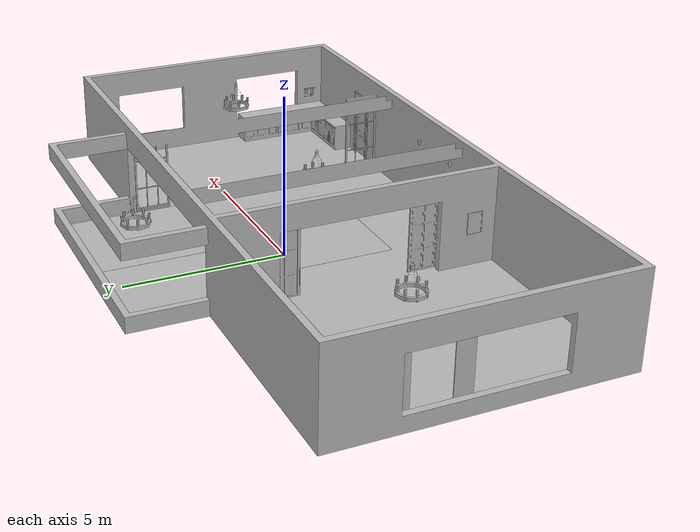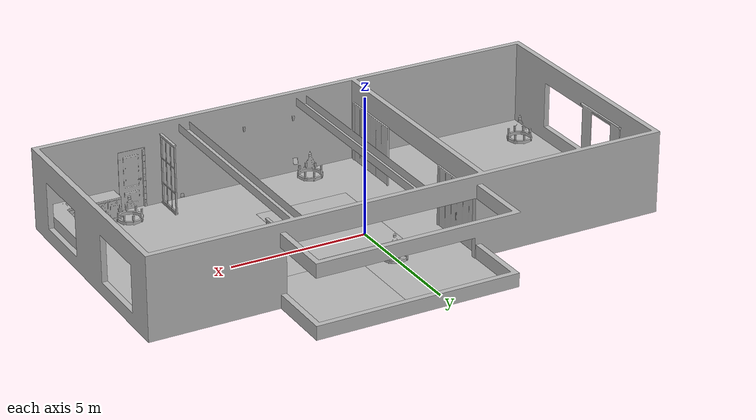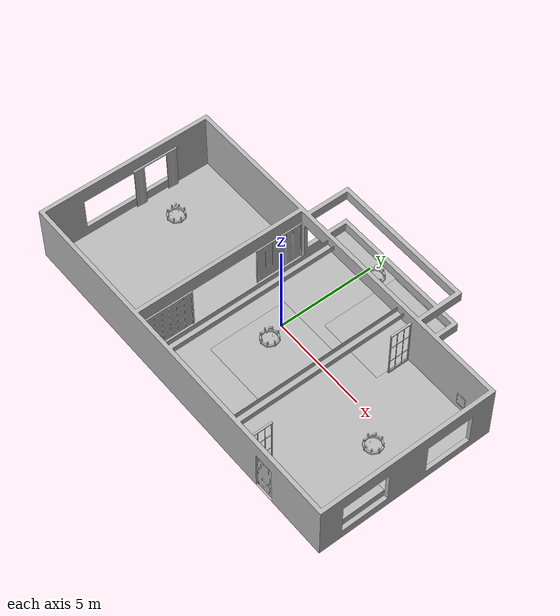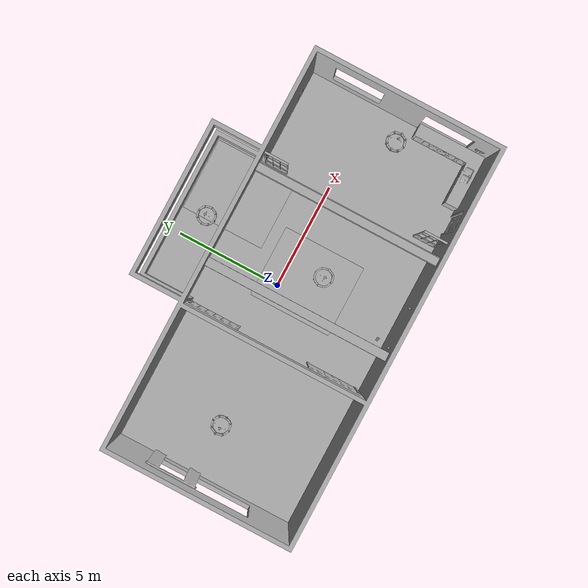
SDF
<sdf version="1.6">
 <world name="default">
  <gravity>0 0 -9.8</gravity>
  <magnetic_field>6e-06 2.3e-05 -4.2e-05</magnetic_field>
  <atmosphere type="adiabatic"/>
  <physics name="default_physics" default="0" type="ode">
   <max_step_size>0.001</max_step_size>
   <real_time_factor>1</real_time_factor>
   <real_time_update_rate>1000</real_time_update_rate>
  </physics>
  <scene>
   <ambient>0.4 0.4 0.4 1</ambient>
   <background>0.7 0.7 0.7 1</background>
   <shadows>false</shadows>
   <grid>false</grid>
   <origin_visual>false</origin_visual>
  </scene>
  <spherical_coordinates>
   <surface_model>EARTH_WGS84</surface_model>
   <latitude_deg>0</latitude_deg>
   <longitude_deg>0</longitude_deg>
   <elevation>0</elevation>
   <heading_deg>0</heading_deg>
  </spherical_coordinates>
  <model name="Chandelier_01_001">
   <static>true</static>
   <include><uri>model://aws_robomaker_residential_Chandelier_01</uri></include>
   <pose>1.221061 4.155740 1.295000 0 -0 0</pose>
  </model>
  <model name="Chandelier_01_002">
   <static>true</static>
   <include><uri>model://aws_robomaker_residential_Chandelier_01</uri></include>
   <pose>-6.451061 -0.692040 1.810000 0 -0 0</pose>
  </model>
  <model name="Chandelier_01_003">
   <static>true</static>
   <include><uri>model://aws_robomaker_residential_Chandelier_01</uri></include>
   <pose>7.824061 -1.59 1.7510000 0 -0 0</pose>
  </model>
  <model name="Chandelier_01_004">
   <static>true</static>
   <include><uri>model://aws_robomaker_residential_Chandelier_01</uri></include>
   <pose>1.221061 -1.592040 1.7873000 0 -0 0</pose>
  </model>
  <model name="Carpet_01_001">
   <static>true</static>
   <include><uri>model://aws_robomaker_residential_Carpet_01</uri></include>
   <pose>0.785050 -1.106647 0.001106 0 -0 0</pose>
  </model>
  <model name="Carpet_01_002">
   <static>true</static>
   <include><uri>model://aws_robomaker_residential_Carpet_01</uri></include>
   <pose>2.854050 3.45 0.000585 0 -0 0</pose>
  </model>
  <model name="Curtain_01_001">
   <static>true</static>
   <include><uri>model://aws_robomaker_residential_Curtain_01</uri></include>
   <pose>-9.172642 0.203760 0 0 -0 0</pose>
  </model>
  <model name="Door_01_001">
   <static>true</static>
   <include><uri>model://aws_robomaker_residential_Door_01</uri></include>
   <pose>6.001449 -5.549002 0 0 -0 0</pose>
  </model>
  <model name="FoldingDoor_01_001">
   <static>true</static>
   <include><uri>model://aws_robomaker_residential_FoldingDoor_01</uri></include>
   <pose>-2.461096 1.844219 0.041881 0 -0 0</pose>
  </model>
  <model name="FoldingDoor_01_002">
   <static>true</static>
   <include><uri>model://aws_robomaker_residential_FoldingDoor_01</uri></include>
   <pose>-2.461096 -4.053320 0.041881 0 -0 0</pose>
  </model>
  <model name="Handle_01_001">
   <static>true</static>
   <include><uri>model://aws_robomaker_residential_Handle_01</uri></include>
   <pose>5.724 -5.523 0.9938 0 -0 -3.1415</pose>
  </model>
  <model name="HouseWallB_01_001">
   <static>true</static>
   <include><uri>model://aws_robomaker_residential_HouseWallB_01</uri></include>
  </model>
  <model name="FloorB_01_001">
   <static>true</static>
   <include><uri>model://aws_robomaker_residential_FloorB_01</uri></include>
  </model>
  <model name="FoldingDoor_02_001">
   <static>true</static>
   <include><uri>model://aws_robomaker_residential_FoldingDoor_02</uri></include>
   <pose>4.674231 2.46451 0 0 -0 3.14159</pose>
  </model>
  <model name="FoldingDoor_02_002">
   <static>true</static>
   <include><uri>model://aws_robomaker_residential_FoldingDoor_02</uri></include>
   <pose>4.8912 -4.84968 0 0 -0 0</pose>
  </model>
  <model name="KitchenCabinet_01_001">
   <static>true</static>
   <include><uri>model://aws_robomaker_residential_KitchenCabinet_01</uri></include>
   <pose>8.002009 -3.836509 0.012068 0 -0 -3.140001</pose>
  </model>
  <model name="KitchenUtensils_01_001">
   <static>true</static>
   <include><uri>model://aws_robomaker_residential_KitchenUtensils_01</uri></include>
   <pose>9.285478 -5.021261 1.141805 0 -0 0</pose>
  </model>
  <model name="LightC_01_001">
   <static>true</static>
   <include><uri>model://aws_robomaker_residential_LightC_01</uri></include>
   <pose>1.769567 -5.4443710 2.000000 0 -0 0</pose>
  </model>
  <model name="LightC_01_002">
   <static>true</static>
   <include><uri>model://aws_robomaker_residential_LightC_01</uri></include>
   <pose>-0.138245 -5.4443710 2.000000 0 -0 0</pose>
  </model>
  <model name="PortraitA_01">
   <static>true</static>
   <include><uri>model://aws_robomaker_residential_PortraitA_01</uri></include>
   <pose>-2.712360 -4.817539 1.00000 0 -0 1.566796</pose>
  </model>
  <model name="PortraitA_02">
   <static>true</static>
   <include><uri>model://aws_robomaker_residential_PortraitA_02</uri></include>
   <pose>7.937017 3.080310 0.300000 0 -0 3.14</pose>
  </model>
  <model name="DeskPortraitA_01">
   <static>true</static>
   <include><uri>model://aws_robomaker_residential_DeskPortraitA_01</uri></include>
   <pose>-0.036864 -5.110156 0.498660 0 -0 2.927784</pose>
  </model>
  <model name="DeskPortraitD_04">
   <static>true</static>
   <include><uri>model://aws_robomaker_residential_DeskPortraitD_04</uri></include>
   <pose>4.302132 -5.176568 0.202496 0.007118 -0.000001 3.046683</pose>
  </model>
  <light name="LivingRoom_CeilingLight_0" type="point">
   <pose>1.194296 4.155759 2.2 0 -0 0</pose>
   <diffuse>0.5 0.5 0.5 1</diffuse>
   <specular>0.1 0.1 0.1 1</specular>
   <attenuation>
    <range>20</range>
    <constant>0.32</constant>
    <linear>0.01</linear>
    <quadratic>0.03</quadratic>
   </attenuation>
   <cast_shadows>0</cast_shadows>
   <direction>0 0 -1</direction>
  </light>
  <light name="LivingRoom_CeilingLight_1" type="point">
   <pose>1.194296 -1.589959 2.2 0 -0 0</pose>
   <diffuse>0.5 0.5 0.5 1</diffuse>
   <specular>0.1 0.1 0.1 1</specular>
   <attenuation>
    <range>20</range>
    <constant>0.05</constant>
    <linear>0.01</linear>
    <quadratic>0.09</quadratic>
   </attenuation>
   <cast_shadows>0</cast_shadows>
   <direction>0 0 -1</direction>
  </light>
  <light name="LivingRoom_WallLight_0" type="point">
   <pose>1.76956 -5.444370 2.2 0 -0 0</pose>
   <diffuse>0.24 0.24 0.24 1</diffuse>
   <specular>0.1 0.1 0.1 1</specular>
   <attenuation>
    <range>20</range>
    <constant>0.12</constant>
    <linear>0.00</linear>
    <quadratic>0.03</quadratic>
   </attenuation>
   <direction>0 0 -1</direction>
  </light>
  <light name="LivingRoom_WallLight_1" type="point">
   <pose>-0.13826 -5.444370 2.2 0 -0 0</pose>
   <diffuse>0.24 0.24 0.24 1</diffuse>
   <specular>0.1 0.1 0.1 1</specular>
   <attenuation>
    <range>20</range>
    <constant>0.12</constant>
    <linear>0.00</linear>
    <quadratic>0.03</quadratic>
   </attenuation>
   <direction>0 0 -1</direction>
  </light>
  <light name="TV_Light_0" type="point">
   <pose>0.8269 -4.939577 1.1 0 -0 0</pose>
   <diffuse>0.31372 0.31372 0.34901 1</diffuse>
   <specular>0.1 0.1 0.1 1</specular>
   <attenuation>
    <range>3</range>
    <constant>0.10</constant>
    <linear>0.04</linear>
    <quadratic>0.50</quadratic>
   </attenuation>
   <direction>0 0 -1</direction>
  </light>
  <light name="BedRoom_Portrait_Light_0" type="spot">
   <pose>-6.190379 -1.829697 1.5587 0.3 -0 0.0</pose>
   <diffuse>0.5 0.5 0.5 1</diffuse>
   <specular>0.1 0.1 0.1 1</specular>
   <attenuation>
    <range>20</range>
    <constant>0.50</constant>
    <linear>0.01</linear>
    <quadratic>0.00</quadratic>
   </attenuation>
   <spot><inner_angle>0.6</inner_angle><outer_angle>1.0</outer_angle><falloff>1.0</falloff></spot>
   <direction>0 0 -1</direction>
  </light>
  <light name="BedRoom_CeilingLight_0" type="point">
   <pose>-6.451061 -0.692040 2.000000 0 -0 0</pose>
   <diffuse>0.5 0.5 0.5 1</diffuse>
   <specular>0.1 0.1 0.1 1</specular>
   <attenuation>
    <range>20</range>
    <constant>0.32</constant>
    <linear>0.01</linear>
    <quadratic>0.03</quadratic>
   </attenuation>
   <cast_shadows>0</cast_shadows>
   <direction>0 0 -1</direction>
  </light>
  <light name="Kitchen_CeilingLight_0" type="point">
   <pose>7.8582 -1.5905 2.280000 0 -0 0</pose>
   <diffuse>0.5 0.5 0.5 1</diffuse>
   <specular>0.1 0.1 0.1 1</specular>
   <attenuation>
    <range>20</range>
    <constant>0.3</constant>
    <linear>0.01</linear>
    <quadratic>0.01</quadratic>
   </attenuation>
   <cast_shadows>0</cast_shadows>
   <direction>0 0 -1</direction>
  </light>
 </world>
</sdf>

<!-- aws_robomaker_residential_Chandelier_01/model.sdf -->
<sdf version="1.6">
  <model name="aws_robomaker_residential_Chandelier_01">
    <link name="link">
      <inertial>
        <mass>1</mass>
      </inertial>
      <collision name="collision">
        <geometry>
          <mesh>
            <uri>model://aws_robomaker_residential_Chandelier_01/meshes/aws_Chandelier_01_collision.DAE</uri>
            <scale>1 1 1</scale>
          </mesh>
        </geometry>
      </collision>
      <visual name="visual">
	    <geometry>
          <mesh>
            <uri>model://aws_robomaker_residential_Chandelier_01/meshes/aws_Chandelier_01_visual.DAE</uri>
          </mesh>
        </geometry>
      <meta> <layer> 2 </layer></meta>
</visual>
    </link>
	<static>1</static>
  </model>
</sdf>

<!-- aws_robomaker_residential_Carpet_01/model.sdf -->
<sdf version="1.6">
  <model name="aws_robomaker_residential_Carpet_01">
    <link name="link">
      <inertial>
        <mass>8.1</mass>
      </inertial>

      <collision name="collision">

        <geometry>
          <mesh>
            <uri>model://aws_robomaker_residential_Carpet_01/meshes/aws_Carpet_01_collision.DAE</uri>
            <scale>1 1 0.95</scale>
          </mesh>
        </geometry>

        <surface>
          <friction>
            <ode>
              <mu>100</mu>
              <mu2>50</mu2>
            </ode>
          </friction>
          <contact>
            <ode>
            </ode>
          </contact>
        </surface>

        <pose>0 0 -0.01 0 0 0 </pose>
      </collision>

      <visual name="visual">
	    <geometry>
          <mesh>
            <uri>model://aws_robomaker_residential_Carpet_01/meshes/aws_Carpet_01_visual.DAE</uri>
          </mesh>
        </geometry>
      <meta> <layer> 1 </layer></meta>
</visual>
    </link>

    <static>1</static>

  </model>
</sdf>

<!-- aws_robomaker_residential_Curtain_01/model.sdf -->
<sdf version="1.6">
  <model name="aws_robomaker_residential_Curtain_01">
    <link name="link">
      <inertial>
        <mass>1</mass>
      </inertial>
      <collision name="collision">
        <geometry>
          <mesh>
            <uri>model://aws_robomaker_residential_Curtain_01/meshes/aws_Curtain_01_collision.DAE</uri>
            <scale>1 1 1</scale>
          </mesh>
        </geometry>
      </collision>
      <visual name="visual">
	    <geometry>
          <mesh>
            <uri>model://aws_robomaker_residential_Curtain_01/meshes/aws_Curtain_01_visual.DAE</uri>
          </mesh>
        </geometry>
      <meta> <layer> 2 </layer></meta>
</visual>
    </link>
	<static>1</static>
  </model>
</sdf>

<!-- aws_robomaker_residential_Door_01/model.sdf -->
<sdf version="1.6">
  <model name="aws_robomaker_residential_Door_01">
    <link name="link">
      <inertial>
        <mass>1</mass>
      </inertial>
      <collision name="collision">
        <geometry>
          <mesh>
            <uri>model://aws_robomaker_residential_Door_01/meshes/aws_Door_01_collision.DAE</uri>
            <scale>1 1 1</scale>
          </mesh>
        </geometry>
      </collision>
      <visual name="visual">
	    <geometry>
          <mesh>
            <uri>model://aws_robomaker_residential_Door_01/meshes/aws_Door_01_visual.DAE</uri>
          </mesh>
        </geometry>
      <meta> <layer> 2 </layer></meta>
</visual>
    </link>
	<static>1</static>
  </model>
</sdf>

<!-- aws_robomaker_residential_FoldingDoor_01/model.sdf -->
<sdf version="1.6">
  <model name="aws_robomaker_residential_FoldingDoor_01">
    <link name="link">
      <inertial>
        <mass>1</mass>
      </inertial>
      <collision name="collision">
        <geometry>
          <mesh>
            <uri>model://aws_robomaker_residential_FoldingDoor_01/meshes/aws_FoldingDoor_01_collision.DAE</uri>
            <scale>1 1 1</scale>
          </mesh>
        </geometry>
      </collision>
      <visual name="visual">
	    <geometry>
          <mesh>
            <uri>model://aws_robomaker_residential_FoldingDoor_01/meshes/aws_FoldingDoor_01_visual.DAE</uri>
          </mesh>
        </geometry>
      <meta> <layer> 2 </layer></meta>
</visual>
    </link>
	<static>1</static>
  </model>
</sdf>

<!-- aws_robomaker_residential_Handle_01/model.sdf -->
<sdf version="1.6">
  <model name="aws_robomaker_residential_Handle_01">
    <link name="link">
      <inertial>
        <mass>1</mass>
      </inertial>
      <collision name="collision">
        <geometry>
          <mesh>
            <uri>model://aws_robomaker_residential_Handle_01/meshes/aws_Handle_01_collision.DAE</uri>
            <scale>1 1 1</scale>
          </mesh>
        </geometry>
      </collision>
      <visual name="visual">
	    <geometry>
          <mesh>
            <uri>model://aws_robomaker_residential_Handle_01/meshes/aws_Handle_01_visual.DAE</uri>
          </mesh>
        </geometry>
      <meta> <layer> 2 </layer></meta>
</visual>
    </link>
	<static>1</static>
  </model>
</sdf>

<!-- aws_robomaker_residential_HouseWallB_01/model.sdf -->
<sdf version="1.6">
  <model name="aws_robomaker_residential_HouseWallB_01">
    <link name="link">
      <inertial>
        <mass>1</mass>
      </inertial>
      <collision name="collision">
        <geometry>
          <mesh>
            <uri>model://aws_robomaker_residential_HouseWallB_01/meshes/aws_HouseWallB_01_collision.DAE</uri>
            <scale>1 1 1</scale>
          </mesh>
        </geometry>
      </collision>
      <visual name="visual">
	    <geometry>
          <mesh>
            <uri>model://aws_robomaker_residential_HouseWallB_01/meshes/aws_HouseWallB_01_visual.DAE</uri>
          </mesh>
        </geometry>
      <meta> <layer> 2 </layer></meta>
</visual>
    </link>
<static>1</static>
  </model>
</sdf>

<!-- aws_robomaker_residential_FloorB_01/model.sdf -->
<sdf version="1.6">
  <model name="aws_robomaker_residential_FloorB_01">
    <link name="link">
      <inertial>
        <mass>100</mass>
      </inertial>

      <collision name="collision">
        <geometry>
          <mesh>
            <uri>model://aws_robomaker_residential_FloorB_01/meshes/aws_FloorB_01_collision.DAE</uri>
            <scale>1 1 0.9</scale>
          </mesh>
        </geometry>

        <surface>
          <friction>
            <ode>
              <mu>100</mu>
              <mu2>50</mu2>
            </ode>
          </friction>
        </surface>
      </collision>

      <visual name="visual">
	    <geometry>
          <mesh>
            <uri>model://aws_robomaker_residential_FloorB_01/meshes/aws_FloorB_01_visual.DAE</uri>
          </mesh>
        </geometry>
      <meta> <layer> 1 </layer></meta>
</visual>
    </link>

	<static>1</static>
  </model>
</sdf>

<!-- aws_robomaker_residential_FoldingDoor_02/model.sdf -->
<sdf version="1.6">
  <model name="aws_robomaker_residential_FoldingDoor_02">
    <link name="link">
      <inertial>
        <mass>1</mass>
      </inertial>
      <collision name="collision">
        <geometry>
          <mesh>
            <uri>model://aws_robomaker_residential_FoldingDoor_02/meshes/aws_FoldingDoor_02_collision.DAE</uri>
            <scale>1 1 1</scale>
          </mesh>
        </geometry>
      </collision>
      <visual name="visual">
	    <geometry>
          <mesh>
            <uri>model://aws_robomaker_residential_FoldingDoor_02/meshes/aws_FoldingDoor_02_visual.DAE</uri>
          </mesh>
        </geometry>
      <meta> <layer> 2 </layer></meta>
</visual>
    </link>
<static>1</static>
  </model>
</sdf>

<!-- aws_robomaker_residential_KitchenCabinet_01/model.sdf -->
<sdf version="1.6">
  <model name="aws_robomaker_residential_KitchenCabinet_01">
    <link name="link">
      <inertial>
        <mass>1</mass>
      </inertial>
      <collision name="collision">
        <laser_retro>0</laser_retro>
        <max_contacts>10</max_contacts>
        <geometry>
          <mesh>
            <uri>model://aws_robomaker_residential_KitchenCabinet_01/meshes/aws_KitchenCabinet_01_collision.DAE</uri>
            <scale>1 1 1</scale>
          </mesh>
        </geometry>
      </collision>
      <visual name="visual">
	    <geometry>
          <mesh>
            <uri>model://aws_robomaker_residential_KitchenCabinet_01/meshes/aws_KitchenCabinet_01_visual.DAE</uri>
          </mesh>
        </geometry>
      <meta> <layer> 1 </layer></meta>
</visual>
    </link>

    <static>1</static>
  </model>
</sdf>

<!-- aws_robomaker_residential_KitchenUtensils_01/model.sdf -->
<sdf version="1.6">
  <model name="aws_robomaker_residential_KitchenUtensils_01">
    <link name="link">
      <inertial>
        <mass>1</mass>
      </inertial>
      <collision name="collision">
        <geometry>
          <mesh>
            <uri>model://aws_robomaker_residential_KitchenUtensils_01/meshes/aws_KitchenUtensils_01_collision.DAE</uri>
            <scale>1 1 1</scale>
          </mesh>
        </geometry>
      </collision>
      <visual name="visual">
	    <geometry>
          <mesh>
            <uri>model://aws_robomaker_residential_KitchenUtensils_01/meshes/aws_KitchenUtensils_01_visual.DAE</uri>
          </mesh>
        </geometry>
      <meta> <layer> 1 </layer></meta>
</visual>
    </link>
	<static>1</static>
  </model>
</sdf>

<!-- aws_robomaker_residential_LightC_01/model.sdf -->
<sdf version="1.6">
  <model name="aws_robomaker_residential_LightC_01">
    <link name="link">
      <inertial>
        <mass>1</mass>
      </inertial>
      <collision name="collision">
        <geometry>
          <mesh>
            <uri>model://aws_robomaker_residential_LightC_01/meshes/aws_LightC_01_collision.DAE</uri>
            <scale>1 1 1</scale>
          </mesh>
        </geometry>
      </collision>
      <visual name="visual">
	    <geometry>
          <mesh>
            <uri>model://aws_robomaker_residential_LightC_01/meshes/aws_LightC_01_visual.DAE</uri>
          </mesh>
        </geometry>
      <meta> <layer> 2 </layer></meta>
</visual>
    </link>
	<static>1</static>
  </model>
</sdf>

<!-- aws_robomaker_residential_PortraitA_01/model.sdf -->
<sdf version="1.6">
  <model name="aws_robomaker_residential_PortraitA_01">
    <link name="link">
      <inertial>
        <mass>1</mass>
      </inertial>
      <collision name="collision">
        <geometry>
          <mesh>
            <uri>model://aws_robomaker_residential_PortraitA_01/meshes/aws_PortraitA_01_collision.DAE</uri>
            <scale>1 1 1</scale>
          </mesh>
        </geometry>
      </collision>
      <visual name="visual">
	    <geometry>
          <mesh>
            <uri>model://aws_robomaker_residential_PortraitA_01/meshes/aws_PortraitA_01_visual.DAE</uri>
          </mesh>
        </geometry>
      <meta> <layer> 2 </layer></meta>
</visual>
    </link>
	<static>1</static>
  </model>
</sdf>

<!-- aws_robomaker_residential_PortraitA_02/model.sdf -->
<sdf version="1.6">
  <model name="aws_robomaker_residential_PortraitA_02">
    <link name="link">
      <inertial>
        <mass>1</mass>
      </inertial>
      <collision name="collision">
        <geometry>
          <mesh>
            <uri>model://aws_robomaker_residential_PortraitA_02/meshes/aws_PortraitA_01_collision.DAE</uri>
            <scale>1 1 1</scale>
          </mesh>
        </geometry>
      </collision>
      <visual name="visual">
	    <geometry>
          <mesh>
            <uri>model://aws_robomaker_residential_PortraitA_02/meshes/aws_PortraitA_01_visual.DAE</uri>
          </mesh>
        </geometry>
      <meta> <layer> 2 </layer></meta>
</visual>
    </link>
	<static>1</static>
  </model>
</sdf>

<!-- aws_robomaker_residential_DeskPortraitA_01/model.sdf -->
<sdf version="1.6">
  <model name="aws_robomaker_residential_DeskPortraitA_01">
    <link name="link">

      <inertial>
        <mass>1</mass>
        <inertia>
            <ixx>0.0835</ixx>
            <ixy>0</ixy>
            <ixz>0</ixz>
            <iyy>0.16</iyy>
            <iyz>0</iyz>
            <izz>0.08347</izz>
        </inertia>
      </inertial>

      <collision name="collision">
        <geometry>
          <mesh>
            <uri>model://aws_robomaker_residential_DeskPortraitA_01/meshes/aws_DeskPortraitA_01_collision.DAE</uri>
            <scale>1 1 1</scale>
          </mesh>
        </geometry>
      </collision>

      <visual name="visual">
	    <geometry>
          <mesh>
            <uri>model://aws_robomaker_residential_DeskPortraitA_01/meshes/aws_DeskPortraitA_01_visual.DAE</uri>
          </mesh>
        </geometry>
      <meta> <layer> 1 </layer></meta>
</visual>
    </link>
  </model>
</sdf>

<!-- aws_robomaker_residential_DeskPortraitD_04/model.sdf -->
<sdf version="1.6">
  <model name="aws_robomaker_residential_DeskPortraitD_04">
    <link name="link">
      <inertial>
        <mass>0.4</mass>
          <inertia>
            <ixx>0.0616</ixx>
            <ixy>0</ixy>
            <ixz>0</ixz>
            <iyy>0.1313</iyy>
            <iyz>0</iyz>
            <izz>0.0803</izz>
          </inertia>
      </inertial>

      <collision name="collision">
        <geometry>
          <mesh>
            <uri>model://aws_robomaker_residential_DeskPortraitD_04/meshes/aws_DeskPortraitD_01_collision.DAE</uri>
            <scale>1 1 1</scale>
          </mesh>
        </geometry>

        <surface>
          <friction>
            <ode>
              <mu>0.7</mu>
              <mu2>0.7</mu2>
            </ode>
          </friction>

          <contact>
            <ode>
              <kd>28500</kd>
            </ode>
          </contact>

        </surface>

      </collision>

      <visual name="visual">
	    <geometry>
          <mesh>
            <uri>model://aws_robomaker_residential_DeskPortraitD_04/meshes/aws_DeskPortraitD_01_visual.DAE</uri>
          </mesh>
        </geometry>
      <meta> <layer> 1 </layer></meta>
</visual>
    </link>
  </model>
</sdf>
